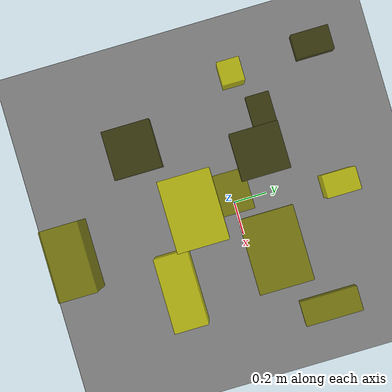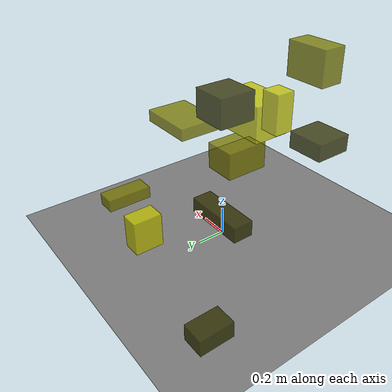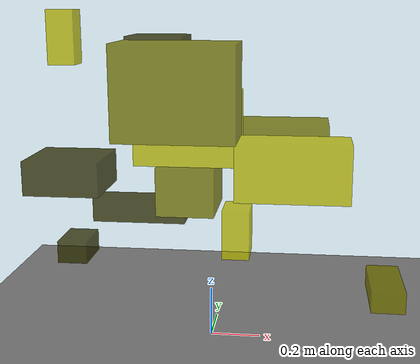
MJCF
<?xml version="1.0"?>
<mujoco model="obstacle_scene">
  <compiler angle="radian" coordinate="local"/>
  <option timestep="0.001" gravity="0 0 -9.81"/>

  <asset>
    <material name="obstacle_mat" rgba="0.8 0.8 0.0 0.8"/>
    <material name="ground_mat" rgba="0.5 0.5 0.5 1"/>
  </asset>

  <worldbody>
    <!-- Ground plane -->
    <geom name="ground" type="plane" size="3 3 0.1" material="ground_mat"/>

    <!-- Obstacles -->
    <body name="obstacle_0" pos="-0.236242 0.174999 1.128766">
      <geom name="obs_0" type="box" size="0.116194 0.118799 0.091443" rgba="0.2 0.2 0.0 0.8"/>
    </body>
    <body name="obstacle_1" pos="0.265411 0.131133 0.836444">
      <geom name="obs_1" type="box" size="0.197351 0.144201 0.040977" rgba="0.5 0.5 0.0 0.8"/>
    </body>
    <body name="obstacle_2" pos="-0.623690 0.143940 1.212776">
      <geom name="obs_2" type="box" size="0.055914 0.052797 0.110465" rgba="0.8 0.8 0.0 0.8"/>
    </body>
    <body name="obstacle_3" pos="-0.346964 0.280529 0.459020">
      <geom name="obs_3" type="box" size="0.203117 0.065701 0.051041" rgba="0.2 0.2 0.0 0.8"/>
    </body>
    <body name="obstacle_4" pos="0.011198 -0.832322 1.114421">
      <geom name="obs_4" type="box" size="0.172919 0.094669 0.135598" rgba="0.5 0.5 0.0 0.8"/>
    </body>
    <body name="obstacle_5" pos="0.331561 -0.392415 0.799577">
      <geom name="obs_5" type="box" size="0.195124 0.089372 0.100111" rgba="0.8 0.8 0.0 0.8"/>
    </body>
    <body name="obstacle_6" pos="-0.433021 -0.434603 0.783100">
      <geom name="obs_6" type="box" size="0.128582 0.126211 0.058400" rgba="0.2 0.2 0.0 0.8"/>
    </body>
    <body name="obstacle_7" pos="0.745343 0.378177 0.083011">
      <geom name="obs_7" type="box" size="0.073779 0.173839 0.047914" rgba="0.5 0.5 0.0 0.8"/>
    </body>
    <body name="obstacle_8" pos="-0.049909 -0.212743 0.911538">
      <geom name="obs_8" type="box" size="0.183976 0.133421 0.123550" rgba="0.8 0.8 0.0 0.8"/>
    </body>
    <body name="obstacle_9" pos="-0.775174 0.699337 0.126430">
      <geom name="obs_9" type="box" size="0.073885 0.112559 0.055219" rgba="0.2 0.2 0.0 0.8"/>
    </body>
    <body name="obstacle_10" pos="-0.075106 -0.056780 0.654623">
      <geom name="obs_10" type="box" size="0.110529 0.147463 0.093136" rgba="0.5 0.5 0.0 0.8"/>
    </body>
    <body name="obstacle_11" pos="0.050463 0.607911 0.265111">
      <geom name="obs_11" type="box" size="0.065670 0.098348 0.118476" rgba="0.8 0.8 0.0 0.8"/>
    </body>
  </worldbody>
</mujoco>
